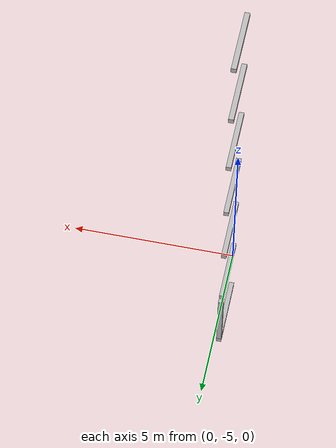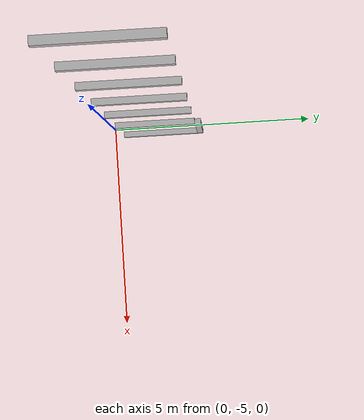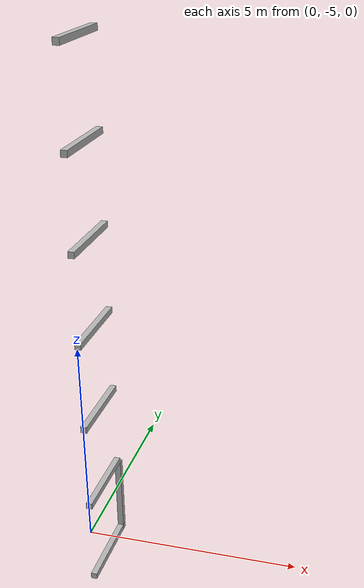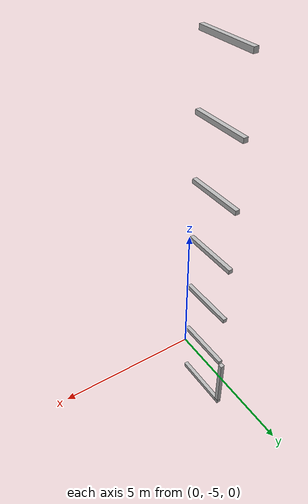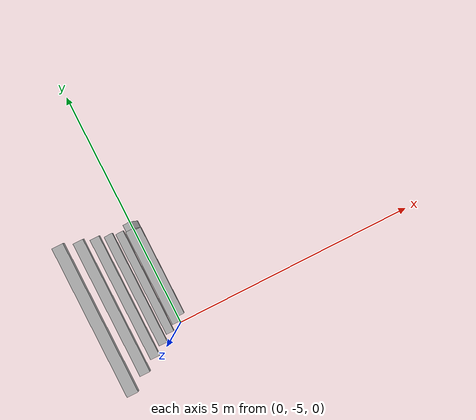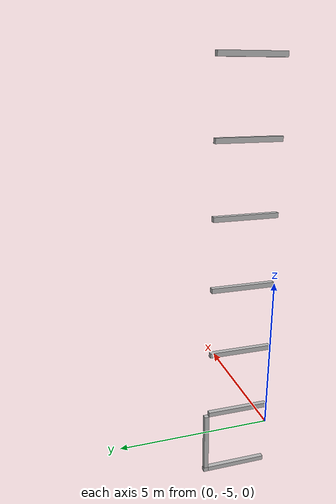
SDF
<sdf version="1.7">
 <world name="default">
  <model name="orthogonal_747_2.000.15_TS">
   <static>1</static>
   <link name="y_link_0_0_3">
    <inertial>
     <mass>1</mass>
     <inertia>
      <ixx>0.166667</ixx>
      <ixy>0</ixy>
      <ixz>0</ixz>
      <iyy>0.166667</iyy>
      <iyz>0</iyz>
      <izz>0.166667</izz>
     </inertia>
    </inertial>
    <pose>6.45 1.075 1.075 0 -0 0</pose>
    <visual name="visual_0">
     <laser_retro>71</laser_retro>
     <geometry><box><size>0.15 1e-06 0.15</size></box></geometry>
     <material>
      <script><name>Gazebo/Grey</name><uri>file://media/materials/scripts/gazebo.material</uri></script>
      <shader type="pixel"><normal_map>__default__</normal_map></shader>
      <ambient>0.678 0.498 0.659 1</ambient>
      <diffuse>0.7 0.7 0.7 1</diffuse>
      <specular>0.01 0.01 0.01 1</specular>
      <emissive>0 0 0 1</emissive>
     </material>
     <pose>0 -1 0 0 -0 0</pose>
     <transparency>1</transparency>
    </visual>
    <visual name="visual_1">
     <laser_retro>72</laser_retro>
     <geometry><box><size>0.15 1e-06 0.15</size></box></geometry>
     <material>
      <script><name>Gazebo/Grey</name><uri>file://media/materials/scripts/gazebo.material</uri></script>
      <shader type="pixel"><normal_map>__default__</normal_map></shader>
      <ambient>0.447 0.624 0.812 1</ambient>
      <diffuse>0.7 0.7 0.7 1</diffuse>
      <specular>0.01 0.01 0.01 1</specular>
      <emissive>0 0 0 1</emissive>
     </material>
     <pose>0 1 0 0 -0 0</pose>
     <transparency>1</transparency>
    </visual>
    <visual name="visual_2">
     <laser_retro>73</laser_retro>
     <geometry><box><size>0.15 2 1e-06</size></box></geometry>
     <material>
      <script><name>Gazebo/Grey</name><uri>file://media/materials/scripts/gazebo.material</uri></script>
      <shader type="pixel"><normal_map>__default__</normal_map></shader>
      <ambient>0.988 0.686 0.243 1</ambient>
      <diffuse>0.7 0.7 0.7 1</diffuse>
      <specular>0.01 0.01 0.01 1</specular>
      <emissive>0 0 0 1</emissive>
     </material>
     <pose>0 0 -0.075 0 -0 0</pose>
     <transparency>1</transparency>
    </visual>
    <visual name="visual_3">
     <laser_retro>74</laser_retro>
     <geometry><box><size>1e-06 2 0.15</size></box></geometry>
     <material>
      <script><name>Gazebo/Grey</name><uri>file://media/materials/scripts/gazebo.material</uri></script>
      <shader type="pixel"><normal_map>__default__</normal_map></shader>
      <ambient>0.988 0.914 0.31 1</ambient>
      <diffuse>0.7 0.7 0.7 1</diffuse>
      <specular>0.01 0.01 0.01 1</specular>
      <emissive>0 0 0 1</emissive>
     </material>
     <pose>0.075 0 0 0 -0 0</pose>
     <transparency>1</transparency>
    </visual>
    <visual name="visual_4">
     <laser_retro>75</laser_retro>
     <geometry><box><size>0.15 2 1e-06</size></box></geometry>
     <material>
      <script><name>Gazebo/Grey</name><uri>file://media/materials/scripts/gazebo.material</uri></script>
      <shader type="pixel"><normal_map>__default__</normal_map></shader>
      <ambient>0.937 0.161 0.161 1</ambient>
      <diffuse>0.7 0.7 0.7 1</diffuse>
      <specular>0.01 0.01 0.01 1</specular>
      <emissive>0 0 0 1</emissive>
     </material>
     <pose>0 0 0.075 0 -0 0</pose>
     <transparency>1</transparency>
    </visual>
    <visual name="visual_5">
     <laser_retro>76</laser_retro>
     <geometry><box><size>1e-06 2 0.15</size></box></geometry>
     <material>
      <script><name>Gazebo/Grey</name><uri>file://media/materials/scripts/gazebo.material</uri></script>
      <shader type="pixel"><normal_map>__default__</normal_map></shader>
      <ambient>0.541 0.886 0.204 1</ambient>
      <diffuse>0.7 0.7 0.7 1</diffuse>
      <specular>0.01 0.01 0.01 1</specular>
      <emissive>0 0 0 1</emissive>
     </material>
     <pose>-0.075 0 0 0 -0 0</pose>
     <transparency>1</transparency>
    </visual>
    <visual name="visual_texture">
     <geometry><box><size>0.149985 1.9998 0.149985</size></box></geometry>
     <material>
      <script>
       <uri>model://BASE_MODELS/simple_block_v2_textured/materials/scripts</uri>
       <uri>model://BASE_MODELS/simple_block_v2_textured/materials/textures</uri>
       <name>metal</name>
      </script>
     </material>
     <laser_retro>77</laser_retro>
    </visual>
    <collision name="collision">
     <geometry><box><size>0.15 2 0.15</size></box></geometry>
     <surface>
      <friction>
       <ode><mu>1</mu><mu2>1</mu2><fdir1>0 0 0</fdir1><slip1>0</slip1><slip2>0</slip2></ode>
       <torsional>
        <coefficient>1</coefficient>
        <patch_radius>0</patch_radius>
        <surface_radius>0</surface_radius>
        <use_patch_radius>1</use_patch_radius>
        <ode><slip>0</slip></ode>
       </torsional>
      </friction>
      <bounce><restitution_coefficient>0</restitution_coefficient><threshold>1e+06</threshold></bounce>
      <contact>
       <collide_without_contact>0</collide_without_contact>
       <collide_without_contact_bitmask>1</collide_without_contact_bitmask>
       <collide_bitmask>1</collide_bitmask>
       <ode>
        <soft_cfm>0</soft_cfm>
        <soft_erp>0.2</soft_erp>
        <kp>1e+13</kp>
        <kd>1</kd>
        <max_vel>0.01</max_vel>
        <min_depth>0</min_depth>
       </ode>
       <bullet>
        <split_impulse>1</split_impulse>
        <split_impulse_penetration_threshold>-0.01</split_impulse_penetration_threshold>
        <soft_cfm>0</soft_cfm>
        <soft_erp>0.2</soft_erp>
        <kp>1e+13</kp>
        <kd>1</kd>
       </bullet>
      </contact>
     </surface>
    </collision>
   </link>
   <link name="u_link_0_1_3">
    <inertial>
     <mass>1</mass>
     <inertia>
      <ixx>0.166667</ixx>
      <ixy>0</ixy>
      <ixz>0</ixz>
      <iyy>0.166667</iyy>
      <iyz>0</iyz>
      <izz>0.166667</izz>
     </inertia>
    </inertial>
    <pose>6.45 2.15 1.075 0 -0 0</pose>
    <visual name="visual_0">
     <laser_retro>239</laser_retro>
     <geometry><box><size>0.15 1e-06 0.15</size></box></geometry>
     <material>
      <script><name>Gazebo/Grey</name><uri>file://media/materials/scripts/gazebo.material</uri></script>
      <shader type="pixel"><normal_map>__default__</normal_map></shader>
      <ambient>0.678 0.498 0.659 1</ambient>
      <diffuse>0.7 0.7 0.7 1</diffuse>
      <specular>0.01 0.01 0.01 1</specular>
      <emissive>0 0 0 1</emissive>
     </material>
     <pose>0 -0.075 0 0 -0 0</pose>
     <transparency>1</transparency>
    </visual>
    <visual name="visual_1">
     <laser_retro>240</laser_retro>
     <geometry><box><size>0.15 1e-06 0.15</size></box></geometry>
     <material>
      <script><name>Gazebo/Grey</name><uri>file://media/materials/scripts/gazebo.material</uri></script>
      <shader type="pixel"><normal_map>__default__</normal_map></shader>
      <ambient>0.447 0.624 0.812 1</ambient>
      <diffuse>0.7 0.7 0.7 1</diffuse>
      <specular>0.01 0.01 0.01 1</specular>
      <emissive>0 0 0 1</emissive>
     </material>
     <pose>0 0.075 0 0 -0 0</pose>
     <transparency>1</transparency>
    </visual>
    <visual name="visual_2">
     <laser_retro>241</laser_retro>
     <geometry><box><size>0.15 0.15 1e-06</size></box></geometry>
     <material>
      <script><name>Gazebo/Grey</name><uri>file://media/materials/scripts/gazebo.material</uri></script>
      <shader type="pixel"><normal_map>__default__</normal_map></shader>
      <ambient>0.988 0.686 0.243 1</ambient>
      <diffuse>0.7 0.7 0.7 1</diffuse>
      <specular>0.01 0.01 0.01 1</specular>
      <emissive>0 0 0 1</emissive>
     </material>
     <pose>0 0 -0.075 0 -0 0</pose>
     <transparency>1</transparency>
    </visual>
    <visual name="visual_3">
     <laser_retro>242</laser_retro>
     <geometry><box><size>1e-06 0.15 0.15</size></box></geometry>
     <material>
      <script><name>Gazebo/Grey</name><uri>file://media/materials/scripts/gazebo.material</uri></script>
      <shader type="pixel"><normal_map>__default__</normal_map></shader>
      <ambient>0.988 0.914 0.31 1</ambient>
      <diffuse>0.7 0.7 0.7 1</diffuse>
      <specular>0.01 0.01 0.01 1</specular>
      <emissive>0 0 0 1</emissive>
     </material>
     <pose>0.075 0 0 0 -0 0</pose>
     <transparency>1</transparency>
    </visual>
    <visual name="visual_4">
     <laser_retro>243</laser_retro>
     <geometry><box><size>0.15 0.15 1e-06</size></box></geometry>
     <material>
      <script><name>Gazebo/Grey</name><uri>file://media/materials/scripts/gazebo.material</uri></script>
      <shader type="pixel"><normal_map>__default__</normal_map></shader>
      <ambient>0.937 0.161 0.161 1</ambient>
      <diffuse>0.7 0.7 0.7 1</diffuse>
      <specular>0.01 0.01 0.01 1</specular>
      <emissive>0 0 0 1</emissive>
     </material>
     <pose>0 0 0.075 0 -0 0</pose>
     <transparency>1</transparency>
    </visual>
    <visual name="visual_5">
     <laser_retro>244</laser_retro>
     <geometry><box><size>1e-06 0.15 0.15</size></box></geometry>
     <material>
      <script><name>Gazebo/Grey</name><uri>file://media/materials/scripts/gazebo.material</uri></script>
      <shader type="pixel"><normal_map>__default__</normal_map></shader>
      <ambient>0.541 0.886 0.204 1</ambient>
      <diffuse>0.7 0.7 0.7 1</diffuse>
      <specular>0.01 0.01 0.01 1</specular>
      <emissive>0 0 0 1</emissive>
     </material>
     <pose>-0.075 0 0 0 -0 0</pose>
     <transparency>1</transparency>
    </visual>
    <visual name="visual_texture">
     <geometry><box><size>0.149985 0.149985 0.149985</size></box></geometry>
     <material>
      <script>
       <uri>model://BASE_MODELS/simple_block_v2_textured/materials/scripts</uri>
       <uri>model://BASE_MODELS/simple_block_v2_textured/materials/textures</uri>
       <name>metal</name>
      </script>
     </material>
     <laser_retro>245</laser_retro>
    </visual>
    <collision name="collision">
     <geometry><box><size>0.15 0.15 0.15</size></box></geometry>
     <surface>
      <friction>
       <ode><mu>1</mu><mu2>1</mu2><fdir1>0 0 0</fdir1><slip1>0</slip1><slip2>0</slip2></ode>
       <torsional>
        <coefficient>1</coefficient>
        <patch_radius>0</patch_radius>
        <surface_radius>0</surface_radius>
        <use_patch_radius>1</use_patch_radius>
        <ode><slip>0</slip></ode>
       </torsional>
      </friction>
      <bounce><restitution_coefficient>0</restitution_coefficient><threshold>1e+06</threshold></bounce>
      <contact>
       <collide_without_contact>0</collide_without_contact>
       <collide_without_contact_bitmask>1</collide_without_contact_bitmask>
       <collide_bitmask>1</collide_bitmask>
       <ode>
        <soft_cfm>0</soft_cfm>
        <soft_erp>0.2</soft_erp>
        <kp>1e+13</kp>
        <kd>1</kd>
        <max_vel>0.01</max_vel>
        <min_depth>0</min_depth>
       </ode>
       <bullet>
        <split_impulse>1</split_impulse>
        <split_impulse_penetration_threshold>-0.01</split_impulse_penetration_threshold>
        <soft_cfm>0</soft_cfm>
        <soft_erp>0.2</soft_erp>
        <kp>1e+13</kp>
        <kd>1</kd>
       </bullet>
      </contact>
     </surface>
    </collision>
   </link>
   <link name="y_link_1_0_3">
    <inertial>
     <mass>1</mass>
     <inertia>
      <ixx>0.166667</ixx>
      <ixy>0</ixy>
      <ixz>0</ixz>
      <iyy>0.166667</iyy>
      <iyz>0</iyz>
      <izz>0.166667</izz>
     </inertia>
    </inertial>
    <pose>6.45 1.075 3.225 0 -0 0</pose>
    <visual name="visual_0">
     <laser_retro>841</laser_retro>
     <geometry><box><size>0.15 1e-06 0.15</size></box></geometry>
     <material>
      <script><name>Gazebo/Grey</name><uri>file://media/materials/scripts/gazebo.material</uri></script>
      <shader type="pixel"><normal_map>__default__</normal_map></shader>
      <ambient>0.678 0.498 0.659 1</ambient>
      <diffuse>0.7 0.7 0.7 1</diffuse>
      <specular>0.01 0.01 0.01 1</specular>
      <emissive>0 0 0 1</emissive>
     </material>
     <pose>0 -1 0 0 -0 0</pose>
     <transparency>1</transparency>
    </visual>
    <visual name="visual_1">
     <laser_retro>842</laser_retro>
     <geometry><box><size>0.15 1e-06 0.15</size></box></geometry>
     <material>
      <script><name>Gazebo/Grey</name><uri>file://media/materials/scripts/gazebo.material</uri></script>
      <shader type="pixel"><normal_map>__default__</normal_map></shader>
      <ambient>0.447 0.624 0.812 1</ambient>
      <diffuse>0.7 0.7 0.7 1</diffuse>
      <specular>0.01 0.01 0.01 1</specular>
      <emissive>0 0 0 1</emissive>
     </material>
     <pose>0 1 0 0 -0 0</pose>
     <transparency>1</transparency>
    </visual>
    <visual name="visual_2">
     <laser_retro>843</laser_retro>
     <geometry><box><size>0.15 2 1e-06</size></box></geometry>
     <material>
      <script><name>Gazebo/Grey</name><uri>file://media/materials/scripts/gazebo.material</uri></script>
      <shader type="pixel"><normal_map>__default__</normal_map></shader>
      <ambient>0.988 0.686 0.243 1</ambient>
      <diffuse>0.7 0.7 0.7 1</diffuse>
      <specular>0.01 0.01 0.01 1</specular>
      <emissive>0 0 0 1</emissive>
     </material>
     <pose>0 0 -0.075 0 -0 0</pose>
     <transparency>1</transparency>
    </visual>
    <visual name="visual_3">
     <laser_retro>844</laser_retro>
     <geometry><box><size>1e-06 2 0.15</size></box></geometry>
     <material>
      <script><name>Gazebo/Grey</name><uri>file://media/materials/scripts/gazebo.material</uri></script>
      <shader type="pixel"><normal_map>__default__</normal_map></shader>
      <ambient>0.988 0.914 0.31 1</ambient>
      <diffuse>0.7 0.7 0.7 1</diffuse>
      <specular>0.01 0.01 0.01 1</specular>
      <emissive>0 0 0 1</emissive>
     </material>
     <pose>0.075 0 0 0 -0 0</pose>
     <transparency>1</transparency>
    </visual>
    <visual name="visual_4">
     <laser_retro>845</laser_retro>
     <geometry><box><size>0.15 2 1e-06</size></box></geometry>
     <material>
      <script><name>Gazebo/Grey</name><uri>file://media/materials/scripts/gazebo.material</uri></script>
      <shader type="pixel"><normal_map>__default__</normal_map></shader>
      <ambient>0.937 0.161 0.161 1</ambient>
      <diffuse>0.7 0.7 0.7 1</diffuse>
      <specular>0.01 0.01 0.01 1</specular>
      <emissive>0 0 0 1</emissive>
     </material>
     <pose>0 0 0.075 0 -0 0</pose>
     <transparency>1</transparency>
    </visual>
    <visual name="visual_5">
     <laser_retro>846</laser_retro>
     <geometry><box><size>1e-06 2 0.15</size></box></geometry>
     <material>
      <script><name>Gazebo/Grey</name><uri>file://media/materials/scripts/gazebo.material</uri></script>
      <shader type="pixel"><normal_map>__default__</normal_map></shader>
      <ambient>0.541 0.886 0.204 1</ambient>
      <diffuse>0.7 0.7 0.7 1</diffuse>
      <specular>0.01 0.01 0.01 1</specular>
      <emissive>0 0 0 1</emissive>
     </material>
     <pose>-0.075 0 0 0 -0 0</pose>
     <transparency>1</transparency>
    </visual>
    <visual name="visual_texture">
     <geometry><box><size>0.149985 1.9998 0.149985</size></box></geometry>
     <material>
      <script>
       <uri>model://BASE_MODELS/simple_block_v2_textured/materials/scripts</uri>
       <uri>model://BASE_MODELS/simple_block_v2_textured/materials/textures</uri>
       <name>metal</name>
      </script>
     </material>
     <laser_retro>847</laser_retro>
    </visual>
    <collision name="collision">
     <geometry><box><size>0.15 2 0.15</size></box></geometry>
     <surface>
      <friction>
       <ode><mu>1</mu><mu2>1</mu2><fdir1>0 0 0</fdir1><slip1>0</slip1><slip2>0</slip2></ode>
       <torsional>
        <coefficient>1</coefficient>
        <patch_radius>0</patch_radius>
        <surface_radius>0</surface_radius>
        <use_patch_radius>1</use_patch_radius>
        <ode><slip>0</slip></ode>
       </torsional>
      </friction>
      <bounce><restitution_coefficient>0</restitution_coefficient><threshold>1e+06</threshold></bounce>
      <contact>
       <collide_without_contact>0</collide_without_contact>
       <collide_without_contact_bitmask>1</collide_without_contact_bitmask>
       <collide_bitmask>1</collide_bitmask>
       <ode>
        <soft_cfm>0</soft_cfm>
        <soft_erp>0.2</soft_erp>
        <kp>1e+13</kp>
        <kd>1</kd>
        <max_vel>0.01</max_vel>
        <min_depth>0</min_depth>
       </ode>
       <bullet>
        <split_impulse>1</split_impulse>
        <split_impulse_penetration_threshold>-0.01</split_impulse_penetration_threshold>
        <soft_cfm>0</soft_cfm>
        <soft_erp>0.2</soft_erp>
        <kp>1e+13</kp>
        <kd>1</kd>
       </bullet>
      </contact>
     </surface>
    </collision>
   </link>
   <link name="z_link_1_1_3">
    <inertial>
     <mass>1</mass>
     <inertia>
      <ixx>0.166667</ixx>
      <ixy>0</ixy>
      <ixz>0</ixz>
      <iyy>0.166667</iyy>
      <iyz>0</iyz>
      <izz>0.166667</izz>
     </inertia>
    </inertial>
    <pose>6.45 2.15 2.15 0 -0 0</pose>
    <visual name="visual_0">
     <laser_retro>1051</laser_retro>
     <geometry><box><size>0.15 1e-06 2</size></box></geometry>
     <material>
      <script><name>Gazebo/Grey</name><uri>file://media/materials/scripts/gazebo.material</uri></script>
      <shader type="pixel"><normal_map>__default__</normal_map></shader>
      <ambient>0.678 0.498 0.659 1</ambient>
      <diffuse>0.7 0.7 0.7 1</diffuse>
      <specular>0.01 0.01 0.01 1</specular>
      <emissive>0 0 0 1</emissive>
     </material>
     <pose>0 -0.075 0 0 -0 0</pose>
     <transparency>1</transparency>
    </visual>
    <visual name="visual_1">
     <laser_retro>1052</laser_retro>
     <geometry><box><size>0.15 1e-06 2</size></box></geometry>
     <material>
      <script><name>Gazebo/Grey</name><uri>file://media/materials/scripts/gazebo.material</uri></script>
      <shader type="pixel"><normal_map>__default__</normal_map></shader>
      <ambient>0.447 0.624 0.812 1</ambient>
      <diffuse>0.7 0.7 0.7 1</diffuse>
      <specular>0.01 0.01 0.01 1</specular>
      <emissive>0 0 0 1</emissive>
     </material>
     <pose>0 0.075 0 0 -0 0</pose>
     <transparency>1</transparency>
    </visual>
    <visual name="visual_2">
     <laser_retro>1053</laser_retro>
     <geometry><box><size>0.15 0.15 1e-06</size></box></geometry>
     <material>
      <script><name>Gazebo/Grey</name><uri>file://media/materials/scripts/gazebo.material</uri></script>
      <shader type="pixel"><normal_map>__default__</normal_map></shader>
      <ambient>0.988 0.686 0.243 1</ambient>
      <diffuse>0.7 0.7 0.7 1</diffuse>
      <specular>0.01 0.01 0.01 1</specular>
      <emissive>0 0 0 1</emissive>
     </material>
     <pose>0 0 -1 0 -0 0</pose>
     <transparency>1</transparency>
    </visual>
    <visual name="visual_3">
     <laser_retro>1054</laser_retro>
     <geometry><box><size>1e-06 0.15 2</size></box></geometry>
     <material>
      <script><name>Gazebo/Grey</name><uri>file://media/materials/scripts/gazebo.material</uri></script>
      <shader type="pixel"><normal_map>__default__</normal_map></shader>
      <ambient>0.988 0.914 0.31 1</ambient>
      <diffuse>0.7 0.7 0.7 1</diffuse>
      <specular>0.01 0.01 0.01 1</specular>
      <emissive>0 0 0 1</emissive>
     </material>
     <pose>0.075 0 0 0 -0 0</pose>
     <transparency>1</transparency>
    </visual>
    <visual name="visual_4">
     <laser_retro>1055</laser_retro>
     <geometry><box><size>0.15 0.15 1e-06</size></box></geometry>
     <material>
      <script><name>Gazebo/Grey</name><uri>file://media/materials/scripts/gazebo.material</uri></script>
      <shader type="pixel"><normal_map>__default__</normal_map></shader>
      <ambient>0.937 0.161 0.161 1</ambient>
      <diffuse>0.7 0.7 0.7 1</diffuse>
      <specular>0.01 0.01 0.01 1</specular>
      <emissive>0 0 0 1</emissive>
     </material>
     <pose>0 0 1 0 -0 0</pose>
     <transparency>1</transparency>
    </visual>
    <visual name="visual_5">
     <laser_retro>1056</laser_retro>
     <geometry><box><size>1e-06 0.15 2</size></box></geometry>
     <material>
      <script><name>Gazebo/Grey</name><uri>file://media/materials/scripts/gazebo.material</uri></script>
      <shader type="pixel"><normal_map>__default__</normal_map></shader>
      <ambient>0.541 0.886 0.204 1</ambient>
      <diffuse>0.7 0.7 0.7 1</diffuse>
      <specular>0.01 0.01 0.01 1</specular>
      <emissive>0 0 0 1</emissive>
     </material>
     <pose>-0.075 0 0 0 -0 0</pose>
     <transparency>1</transparency>
    </visual>
    <visual name="visual_texture">
     <geometry><box><size>0.149985 0.149985 1.9998</size></box></geometry>
     <material>
      <script>
       <uri>model://BASE_MODELS/simple_block_v2_textured/materials/scripts</uri>
       <uri>model://BASE_MODELS/simple_block_v2_textured/materials/textures</uri>
       <name>metal</name>
      </script>
     </material>
     <laser_retro>1057</laser_retro>
    </visual>
    <collision name="collision">
     <geometry><box><size>0.15 0.15 2</size></box></geometry>
     <surface>
      <friction>
       <ode><mu>1</mu><mu2>1</mu2><fdir1>0 0 0</fdir1><slip1>0</slip1><slip2>0</slip2></ode>
       <torsional>
        <coefficient>1</coefficient>
        <patch_radius>0</patch_radius>
        <surface_radius>0</surface_radius>
        <use_patch_radius>1</use_patch_radius>
        <ode><slip>0</slip></ode>
       </torsional>
      </friction>
      <bounce><restitution_coefficient>0</restitution_coefficient><threshold>1e+06</threshold></bounce>
      <contact>
       <collide_without_contact>0</collide_without_contact>
       <collide_without_contact_bitmask>1</collide_without_contact_bitmask>
       <collide_bitmask>1</collide_bitmask>
       <ode>
        <soft_cfm>0</soft_cfm>
        <soft_erp>0.2</soft_erp>
        <kp>1e+13</kp>
        <kd>1</kd>
        <max_vel>0.01</max_vel>
        <min_depth>0</min_depth>
       </ode>
       <bullet>
        <split_impulse>1</split_impulse>
        <split_impulse_penetration_threshold>-0.01</split_impulse_penetration_threshold>
        <soft_cfm>0</soft_cfm>
        <soft_erp>0.2</soft_erp>
        <kp>1e+13</kp>
        <kd>1</kd>
       </bullet>
      </contact>
     </surface>
    </collision>
   </link>
   <link name="y_link_2_0_3">
    <inertial>
     <mass>1</mass>
     <inertia>
      <ixx>0.166667</ixx>
      <ixy>0</ixy>
      <ixz>0</ixz>
      <iyy>0.166667</iyy>
      <iyz>0</iyz>
      <izz>0.166667</izz>
     </inertia>
    </inertial>
    <pose>6.45 1.075 5.375 0 -0 0</pose>
    <visual name="visual_0">
     <laser_retro>1744</laser_retro>
     <geometry><box><size>0.15 1e-06 0.15</size></box></geometry>
     <material>
      <script><name>Gazebo/Grey</name><uri>file://media/materials/scripts/gazebo.material</uri></script>
      <shader type="pixel"><normal_map>__default__</normal_map></shader>
      <ambient>0.678 0.498 0.659 1</ambient>
      <diffuse>0.7 0.7 0.7 1</diffuse>
      <specular>0.01 0.01 0.01 1</specular>
      <emissive>0 0 0 1</emissive>
     </material>
     <pose>0 -1 0 0 -0 0</pose>
     <transparency>1</transparency>
    </visual>
    <visual name="visual_1">
     <laser_retro>1745</laser_retro>
     <geometry><box><size>0.15 1e-06 0.15</size></box></geometry>
     <material>
      <script><name>Gazebo/Grey</name><uri>file://media/materials/scripts/gazebo.material</uri></script>
      <shader type="pixel"><normal_map>__default__</normal_map></shader>
      <ambient>0.447 0.624 0.812 1</ambient>
      <diffuse>0.7 0.7 0.7 1</diffuse>
      <specular>0.01 0.01 0.01 1</specular>
      <emissive>0 0 0 1</emissive>
     </material>
     <pose>0 1 0 0 -0 0</pose>
     <transparency>1</transparency>
    </visual>
    <visual name="visual_2">
     <laser_retro>1746</laser_retro>
     <geometry><box><size>0.15 2 1e-06</size></box></geometry>
     <material>
      <script><name>Gazebo/Grey</name><uri>file://media/materials/scripts/gazebo.material</uri></script>
      <shader type="pixel"><normal_map>__default__</normal_map></shader>
      <ambient>0.988 0.686 0.243 1</ambient>
      <diffuse>0.7 0.7 0.7 1</diffuse>
      <specular>0.01 0.01 0.01 1</specular>
      <emissive>0 0 0 1</emissive>
     </material>
     <pose>0 0 -0.075 0 -0 0</pose>
     <transparency>1</transparency>
    </visual>
    <visual name="visual_3">
     <laser_retro>1747</laser_retro>
     <geometry><box><size>1e-06 2 0.15</size></box></geometry>
     <material>
      <script><name>Gazebo/Grey</name><uri>file://media/materials/scripts/gazebo.material</uri></script>
      <shader type="pixel"><normal_map>__default__</normal_map></shader>
      <ambient>0.988 0.914 0.31 1</ambient>
      <diffuse>0.7 0.7 0.7 1</diffuse>
      <specular>0.01 0.01 0.01 1</specular>
      <emissive>0 0 0 1</emissive>
     </material>
     <pose>0.075 0 0 0 -0 0</pose>
     <transparency>1</transparency>
    </visual>
    <visual name="visual_4">
     <laser_retro>1748</laser_retro>
     <geometry><box><size>0.15 2 1e-06</size></box></geometry>
     <material>
      <script><name>Gazebo/Grey</name><uri>file://media/materials/scripts/gazebo.material</uri></script>
      <shader type="pixel"><normal_map>__default__</normal_map></shader>
      <ambient>0.937 0.161 0.161 1</ambient>
      <diffuse>0.7 0.7 0.7 1</diffuse>
      <specular>0.01 0.01 0.01 1</specular>
      <emissive>0 0 0 1</emissive>
     </material>
     <pose>0 0 0.075 0 -0 0</pose>
     <transparency>1</transparency>
    </visual>
    <visual name="visual_5">
     <laser_retro>1749</laser_retro>
     <geometry><box><size>1e-06 2 0.15</size></box></geometry>
     <material>
      <script><name>Gazebo/Grey</name><uri>file://media/materials/scripts/gazebo.material</uri></script>
      <shader type="pixel"><normal_map>__default__</normal_map></shader>
      <ambient>0.541 0.886 0.204 1</ambient>
      <diffuse>0.7 0.7 0.7 1</diffuse>
      <specular>0.01 0.01 0.01 1</specular>
      <emissive>0 0 0 1</emissive>
     </material>
     <pose>-0.075 0 0 0 -0 0</pose>
     <transparency>1</transparency>
    </visual>
    <visual name="visual_texture">
     <geometry><box><size>0.149985 1.9998 0.149985</size></box></geometry>
     <material>
      <script>
       <uri>model://BASE_MODELS/simple_block_v2_textured/materials/scripts</uri>
       <uri>model://BASE_MODELS/simple_block_v2_textured/materials/textures</uri>
       <name>metal</name>
      </script>
     </material>
     <laser_retro>1750</laser_retro>
    </visual>
    <collision name="collision">
     <geometry><box><size>0.15 2 0.15</size></box></geometry>
     <surface>
      <friction>
       <ode><mu>1</mu><mu2>1</mu2><fdir1>0 0 0</fdir1><slip1>0</slip1><slip2>0</slip2></ode>
       <torsional>
        <coefficient>1</coefficient>
        <patch_radius>0</patch_radius>
        <surface_radius>0</surface_radius>
        <use_patch_radius>1</use_patch_radius>
        <ode><slip>0</slip></ode>
       </torsional>
      </friction>
      <bounce><restitution_coefficient>0</restitution_coefficient><threshold>1e+06</threshold></bounce>
      <contact>
       <collide_without_contact>0</collide_without_contact>
       <collide_without_contact_bitmask>1</collide_without_contact_bitmask>
       <collide_bitmask>1</collide_bitmask>
       <ode>
        <soft_cfm>0</soft_cfm>
        <soft_erp>0.2</soft_erp>
        <kp>1e+13</kp>
        <kd>1</kd>
        <max_vel>0.01</max_vel>
        <min_depth>0</min_depth>
       </ode>
       <bullet>
        <split_impulse>1</split_impulse>
        <split_impulse_penetration_threshold>-0.01</split_impulse_penetration_threshold>
        <soft_cfm>0</soft_cfm>
        <soft_erp>0.2</soft_erp>
        <kp>1e+13</kp>
        <kd>1</kd>
       </bullet>
      </contact>
     </surface>
    </collision>
   </link>
   <link name="y_link_3_0_3">
    <inertial>
     <mass>1</mass>
     <inertia>
      <ixx>0.166667</ixx>
      <ixy>0</ixy>
      <ixz>0</ixz>
      <iyy>0.166667</iyy>
      <iyz>0</iyz>
      <izz>0.166667</izz>
     </inertia>
    </inertial>
    <pose>6.45 1.075 7.525 0 -0 0</pose>
    <visual name="visual_0">
     <laser_retro>2647</laser_retro>
     <geometry><box><size>0.15 1e-06 0.15</size></box></geometry>
     <material>
      <script><name>Gazebo/Grey</name><uri>file://media/materials/scripts/gazebo.material</uri></script>
      <shader type="pixel"><normal_map>__default__</normal_map></shader>
      <ambient>0.678 0.498 0.659 1</ambient>
      <diffuse>0.7 0.7 0.7 1</diffuse>
      <specular>0.01 0.01 0.01 1</specular>
      <emissive>0 0 0 1</emissive>
     </material>
     <pose>0 -1 0 0 -0 0</pose>
     <transparency>1</transparency>
    </visual>
    <visual name="visual_1">
     <laser_retro>2648</laser_retro>
     <geometry><box><size>0.15 1e-06 0.15</size></box></geometry>
     <material>
      <script><name>Gazebo/Grey</name><uri>file://media/materials/scripts/gazebo.material</uri></script>
      <shader type="pixel"><normal_map>__default__</normal_map></shader>
      <ambient>0.447 0.624 0.812 1</ambient>
      <diffuse>0.7 0.7 0.7 1</diffuse>
      <specular>0.01 0.01 0.01 1</specular>
      <emissive>0 0 0 1</emissive>
     </material>
     <pose>0 1 0 0 -0 0</pose>
     <transparency>1</transparency>
    </visual>
    <visual name="visual_2">
     <laser_retro>2649</laser_retro>
     <geometry><box><size>0.15 2 1e-06</size></box></geometry>
     <material>
      <script><name>Gazebo/Grey</name><uri>file://media/materials/scripts/gazebo.material</uri></script>
      <shader type="pixel"><normal_map>__default__</normal_map></shader>
      <ambient>0.988 0.686 0.243 1</ambient>
      <diffuse>0.7 0.7 0.7 1</diffuse>
      <specular>0.01 0.01 0.01 1</specular>
      <emissive>0 0 0 1</emissive>
     </material>
     <pose>0 0 -0.075 0 -0 0</pose>
     <transparency>1</transparency>
    </visual>
    <visual name="visual_3">
     <laser_retro>2650</laser_retro>
     <geometry><box><size>1e-06 2 0.15</size></box></geometry>
     <material>
      <script><name>Gazebo/Grey</name><uri>file://media/materials/scripts/gazebo.material</uri></script>
      <shader type="pixel"><normal_map>__default__</normal_map></shader>
      <ambient>0.988 0.914 0.31 1</ambient>
      <diffuse>0.7 0.7 0.7 1</diffuse>
      <specular>0.01 0.01 0.01 1</specular>
      <emissive>0 0 0 1</emissive>
     </material>
     <pose>0.075 0 0 0 -0 0</pose>
     <transparency>1</transparency>
    </visual>
    <visual name="visual_4">
     <laser_retro>2651</laser_retro>
     <geometry><box><size>0.15 2 1e-06</size></box></geometry>
     <material>
      <script><name>Gazebo/Grey</name><uri>file://media/materials/scripts/gazebo.material</uri></script>
      <shader type="pixel"><normal_map>__default__</normal_map></shader>
      <ambient>0.937 0.161 0.161 1</ambient>
      <diffuse>0.7 0.7 0.7 1</diffuse>
      <specular>0.01 0.01 0.01 1</specular>
      <emissive>0 0 0 1</emissive>
     </material>
     <pose>0 0 0.075 0 -0 0</pose>
     <transparency>1</transparency>
    </visual>
    <visual name="visual_5">
     <laser_retro>2652</laser_retro>
     <geometry><box><size>1e-06 2 0.15</size></box></geometry>
     <material>
      <script><name>Gazebo/Grey</name><uri>file://media/materials/scripts/gazebo.material</uri></script>
      <shader type="pixel"><normal_map>__default__</normal_map></shader>
      <ambient>0.541 0.886 0.204 1</ambient>
      <diffuse>0.7 0.7 0.7 1</diffuse>
      <specular>0.01 0.01 0.01 1</specular>
      <emissive>0 0 0 1</emissive>
     </material>
     <pose>-0.075 0 0 0 -0 0</pose>
     <transparency>1</transparency>
    </visual>
    <visual name="visual_texture">
     <geometry><box><size>0.149985 1.9998 0.149985</size></box></geometry>
     <material>
      <script>
       <uri>model://BASE_MODELS/simple_block_v2_textured/materials/scripts</uri>
       <uri>model://BASE_MODELS/simple_block_v2_textured/materials/textures</uri>
       <name>metal</name>
      </script>
     </material>
     <laser_retro>2653</laser_retro>
    </visual>
    <collision name="collision">
     <geometry><box><size>0.15 2 0.15</size></box></geometry>
     <surface>
      <friction>
       <ode><mu>1</mu><mu2>1</mu2><fdir1>0 0 0</fdir1><slip1>0</slip1><slip2>0</slip2></ode>
       <torsional>
        <coefficient>1</coefficient>
        <patch_radius>0</patch_radius>
        <surface_radius>0</surface_radius>
        <use_patch_radius>1</use_patch_radius>
        <ode><slip>0</slip></ode>
       </torsional>
      </friction>
      <bounce><restitution_coefficient>0</restitution_coefficient><threshold>1e+06</threshold></bounce>
      <contact>
       <collide_without_contact>0</collide_without_contact>
       <collide_without_contact_bitmask>1</collide_without_contact_bitmask>
       <collide_bitmask>1</collide_bitmask>
       <ode>
        <soft_cfm>0</soft_cfm>
        <soft_erp>0.2</soft_erp>
        <kp>1e+13</kp>
        <kd>1</kd>
        <max_vel>0.01</max_vel>
        <min_depth>0</min_depth>
       </ode>
       <bullet>
        <split_impulse>1</split_impulse>
        <split_impulse_penetration_threshold>-0.01</split_impulse_penetration_threshold>
        <soft_cfm>0</soft_cfm>
        <soft_erp>0.2</soft_erp>
        <kp>1e+13</kp>
        <kd>1</kd>
       </bullet>
      </contact>
     </surface>
    </collision>
   </link>
   <link name="y_link_4_0_3">
    <inertial>
     <mass>1</mass>
     <inertia>
      <ixx>0.166667</ixx>
      <ixy>0</ixy>
      <ixz>0</ixz>
      <iyy>0.166667</iyy>
      <iyz>0</iyz>
      <izz>0.166667</izz>
     </inertia>
    </inertial>
    <pose>6.45 1.075 9.675 0 -0 0</pose>
    <visual name="visual_0">
     <laser_retro>3550</laser_retro>
     <geometry><box><size>0.15 1e-06 0.15</size></box></geometry>
     <material>
      <script><name>Gazebo/Grey</name><uri>file://media/materials/scripts/gazebo.material</uri></script>
      <shader type="pixel"><normal_map>__default__</normal_map></shader>
      <ambient>0.678 0.498 0.659 1</ambient>
      <diffuse>0.7 0.7 0.7 1</diffuse>
      <specular>0.01 0.01 0.01 1</specular>
      <emissive>0 0 0 1</emissive>
     </material>
     <pose>0 -1 0 0 -0 0</pose>
     <transparency>1</transparency>
    </visual>
    <visual name="visual_1">
     <laser_retro>3551</laser_retro>
     <geometry><box><size>0.15 1e-06 0.15</size></box></geometry>
     <material>
      <script><name>Gazebo/Grey</name><uri>file://media/materials/scripts/gazebo.material</uri></script>
      <shader type="pixel"><normal_map>__default__</normal_map></shader>
      <ambient>0.447 0.624 0.812 1</ambient>
      <diffuse>0.7 0.7 0.7 1</diffuse>
      <specular>0.01 0.01 0.01 1</specular>
      <emissive>0 0 0 1</emissive>
     </material>
     <pose>0 1 0 0 -0 0</pose>
     <transparency>1</transparency>
    </visual>
    <visual name="visual_2">
     <laser_retro>3552</laser_retro>
     <geometry><box><size>0.15 2 1e-06</size></box></geometry>
     <material>
      <script><name>Gazebo/Grey</name><uri>file://media/materials/scripts/gazebo.material</uri></script>
      <shader type="pixel"><normal_map>__default__</normal_map></shader>
      <ambient>0.988 0.686 0.243 1</ambient>
      <diffuse>0.7 0.7 0.7 1</diffuse>
      <specular>0.01 0.01 0.01 1</specular>
      <emissive>0 0 0 1</emissive>
     </material>
     <pose>0 0 -0.075 0 -0 0</pose>
     <transparency>1</transparency>
    </visual>
    <visual name="visual_3">
     <laser_retro>3553</laser_retro>
     <geometry><box><size>1e-06 2 0.15</size></box></geometry>
     <material>
      <script><name>Gazebo/Grey</name><uri>file://media/materials/scripts/gazebo.material</uri></script>
      <shader type="pixel"><normal_map>__default__</normal_map></shader>
      <ambient>0.988 0.914 0.31 1</ambient>
      <diffuse>0.7 0.7 0.7 1</diffuse>
      <specular>0.01 0.01 0.01 1</specular>
      <emissive>0 0 0 1</emissive>
     </material>
     <pose>0.075 0 0 0 -0 0</pose>
     <transparency>1</transparency>
    </visual>
    <visual name="visual_4">
     <laser_retro>3554</laser_retro>
     <geometry><box><size>0.15 2 1e-06</size></box></geometry>
     <material>
      <script><name>Gazebo/Grey</name><uri>file://media/materials/scripts/gazebo.material</uri></script>
      <shader type="pixel"><normal_map>__default__</normal_map></shader>
      <ambient>0.937 0.161 0.161 1</ambient>
      <diffuse>0.7 0.7 0.7 1</diffuse>
      <specular>0.01 0.01 0.01 1</specular>
      <emissive>0 0 0 1</emissive>
     </material>
     <pose>0 0 0.075 0 -0 0</pose>
     <transparency>1</transparency>
    </visual>
    <visual name="visual_5">
     <laser_retro>3555</laser_retro>
     <geometry><box><size>1e-06 2 0.15</size></box></geometry>
     <material>
      <script><name>Gazebo/Grey</name><uri>file://media/materials/scripts/gazebo.material</uri></script>
      <shader type="pixel"><normal_map>__default__</normal_map></shader>
      <ambient>0.541 0.886 0.204 1</ambient>
      <diffuse>0.7 0.7 0.7 1</diffuse>
      <specular>0.01 0.01 0.01 1</specular>
      <emissive>0 0 0 1</emissive>
     </material>
     <pose>-0.075 0 0 0 -0 0</pose>
     <transparency>1</transparency>
    </visual>
    <visual name="visual_texture">
     <geometry><box><size>0.149985 1.9998 0.149985</size></box></geometry>
     <material>
      <script>
       <uri>model://BASE_MODELS/simple_block_v2_textured/materials/scripts</uri>
       <uri>model://BASE_MODELS/simple_block_v2_textured/materials/textures</uri>
       <name>metal</name>
      </script>
     </material>
     <laser_retro>3556</laser_retro>
    </visual>
    <collision name="collision">
     <geometry><box><size>0.15 2 0.15</size></box></geometry>
     <surface>
      <friction>
       <ode><mu>1</mu><mu2>1</mu2><fdir1>0 0 0</fdir1><slip1>0</slip1><slip2>0</slip2></ode>
       <torsional>
        <coefficient>1</coefficient>
        <patch_radius>0</patch_radius>
        <surface_radius>0</surface_radius>
        <use_patch_radius>1</use_patch_radius>
        <ode><slip>0</slip></ode>
       </torsional>
      </friction>
      <bounce><restitution_coefficient>0</restitution_coefficient><threshold>1e+06</threshold></bounce>
      <contact>
       <collide_without_contact>0</collide_without_contact>
       <collide_without_contact_bitmask>1</collide_without_contact_bitmask>
       <collide_bitmask>1</collide_bitmask>
       <ode>
        <soft_cfm>0</soft_cfm>
        <soft_erp>0.2</soft_erp>
        <kp>1e+13</kp>
        <kd>1</kd>
        <max_vel>0.01</max_vel>
        <min_depth>0</min_depth>
       </ode>
       <bullet>
        <split_impulse>1</split_impulse>
        <split_impulse_penetration_threshold>-0.01</split_impulse_penetration_threshold>
        <soft_cfm>0</soft_cfm>
        <soft_erp>0.2</soft_erp>
        <kp>1e+13</kp>
        <kd>1</kd>
       </bullet>
      </contact>
     </surface>
    </collision>
   </link>
   <link name="y_link_5_0_3">
    <inertial>
     <mass>1</mass>
     <inertia>
      <ixx>0.166667</ixx>
      <ixy>0</ixy>
      <ixz>0</ixz>
      <iyy>0.166667</iyy>
      <iyz>0</iyz>
      <izz>0.166667</izz>
     </inertia>
    </inertial>
    <pose>6.45 1.075 11.825 0 -0 0</pose>
    <visual name="visual_0">
     <laser_retro>4453</laser_retro>
     <geometry><box><size>0.15 1e-06 0.15</size></box></geometry>
     <material>
      <script><name>Gazebo/Grey</name><uri>file://media/materials/scripts/gazebo.material</uri></script>
      <shader type="pixel"><normal_map>__default__</normal_map></shader>
      <ambient>0.678 0.498 0.659 1</ambient>
      <diffuse>0.7 0.7 0.7 1</diffuse>
      <specular>0.01 0.01 0.01 1</specular>
      <emissive>0 0 0 1</emissive>
     </material>
     <pose>0 -1 0 0 -0 0</pose>
     <transparency>1</transparency>
    </visual>
    <visual name="visual_1">
     <laser_retro>4454</laser_retro>
     <geometry><box><size>0.15 1e-06 0.15</size></box></geometry>
     <material>
      <script><name>Gazebo/Grey</name><uri>file://media/materials/scripts/gazebo.material</uri></script>
      <shader type="pixel"><normal_map>__default__</normal_map></shader>
      <ambient>0.447 0.624 0.812 1</ambient>
      <diffuse>0.7 0.7 0.7 1</diffuse>
      <specular>0.01 0.01 0.01 1</specular>
      <emissive>0 0 0 1</emissive>
     </material>
     <pose>0 1 0 0 -0 0</pose>
     <transparency>1</transparency>
    </visual>
    <visual name="visual_2">
     <laser_retro>4455</laser_retro>
     <geometry><box><size>0.15 2 1e-06</size></box></geometry>
     <material>
      <script><name>Gazebo/Grey</name><uri>file://media/materials/scripts/gazebo.material</uri></script>
      <shader type="pixel"><normal_map>__default__</normal_map></shader>
      <ambient>0.988 0.686 0.243 1</ambient>
      <diffuse>0.7 0.7 0.7 1</diffuse>
      <specular>0.01 0.01 0.01 1</specular>
      <emissive>0 0 0 1</emissive>
     </material>
     <pose>0 0 -0.075 0 -0 0</pose>
     <transparency>1</transparency>
    </visual>
    <visual name="visual_3">
     <laser_retro>4456</laser_retro>
     <geometry><box><size>1e-06 2 0.15</size></box></geometry>
     <material>
      <script><name>Gazebo/Grey</name><uri>file://media/materials/scripts/gazebo.material</uri></script>
      <shader type="pixel"><normal_map>__default__</normal_map></shader>
      <ambient>0.988 0.914 0.31 1</ambient>
      <diffuse>0.7 0.7 0.7 1</diffuse>
      <specular>0.01 0.01 0.01 1</specular>
      <emissive>0 0 0 1</emissive>
     </material>
     <pose>0.075 0 0 0 -0 0</pose>
     <transparency>1</transparency>
    </visual>
    <visual name="visual_4">
     <laser_retro>4457</laser_retro>
     <geometry><box><size>0.15 2 1e-06</size></box></geometry>
     <material>
      <script><name>Gazebo/Grey</name><uri>file://media/materials/scripts/gazebo.material</uri></script>
      <shader type="pixel"><normal_map>__default__</normal_map></shader>
      <ambient>0.937 0.161 0.161 1</ambient>
      <diffuse>0.7 0.7 0.7 1</diffuse>
      <specular>0.01 0.01 0.01 1</specular>
      <emissive>0 0 0 1</emissive>
     </material>
     <pose>0 0 0.075 0 -0 0</pose>
     <transparency>1</transparency>
    </visual>
    <visual name="visual_5">
     <laser_retro>4458</laser_retro>
     <geometry><box><size>1e-06 2 0.15</size></box></geometry>
     <material>
      <script><name>Gazebo/Grey</name><uri>file://media/materials/scripts/gazebo.material</uri></script>
      <shader type="pixel"><normal_map>__default__</normal_map></shader>
      <ambient>0.541 0.886 0.204 1</ambient>
      <diffuse>0.7 0.7 0.7 1</diffuse>
      <specular>0.01 0.01 0.01 1</specular>
      <emissive>0 0 0 1</emissive>
     </material>
     <pose>-0.075 0 0 0 -0 0</pose>
     <transparency>1</transparency>
    </visual>
    <visual name="visual_texture">
     <geometry><box><size>0.149985 1.9998 0.149985</size></box></geometry>
     <material>
      <script>
       <uri>model://BASE_MODELS/simple_block_v2_textured/materials/scripts</uri>
       <uri>model://BASE_MODELS/simple_block_v2_textured/materials/textures</uri>
       <name>metal</name>
      </script>
     </material>
     <laser_retro>4459</laser_retro>
    </visual>
    <collision name="collision">
     <geometry><box><size>0.15 2 0.15</size></box></geometry>
     <surface>
      <friction>
       <ode><mu>1</mu><mu2>1</mu2><fdir1>0 0 0</fdir1><slip1>0</slip1><slip2>0</slip2></ode>
       <torsional>
        <coefficient>1</coefficient>
        <patch_radius>0</patch_radius>
        <surface_radius>0</surface_radius>
        <use_patch_radius>1</use_patch_radius>
        <ode><slip>0</slip></ode>
       </torsional>
      </friction>
      <bounce><restitution_coefficient>0</restitution_coefficient><threshold>1e+06</threshold></bounce>
      <contact>
       <collide_without_contact>0</collide_without_contact>
       <collide_without_contact_bitmask>1</collide_without_contact_bitmask>
       <collide_bitmask>1</collide_bitmask>
       <ode>
        <soft_cfm>0</soft_cfm>
        <soft_erp>0.2</soft_erp>
        <kp>1e+13</kp>
        <kd>1</kd>
        <max_vel>0.01</max_vel>
        <min_depth>0</min_depth>
       </ode>
       <bullet>
        <split_impulse>1</split_impulse>
        <split_impulse_penetration_threshold>-0.01</split_impulse_penetration_threshold>
        <soft_cfm>0</soft_cfm>
        <soft_erp>0.2</soft_erp>
        <kp>1e+13</kp>
        <kd>1</kd>
       </bullet>
      </contact>
     </surface>
    </collision>
   </link>
   <link name="y_link_6_0_3">
    <inertial>
     <mass>1</mass>
     <inertia>
      <ixx>0.166667</ixx>
      <ixy>0</ixy>
      <ixz>0</ixz>
      <iyy>0.166667</iyy>
      <iyz>0</iyz>
      <izz>0.166667</izz>
     </inertia>
    </inertial>
    <pose>6.45 1.075 13.975 0 -0 0</pose>
    <visual name="visual_0">
     <laser_retro>5356</laser_retro>
     <geometry><box><size>0.15 1e-06 0.15</size></box></geometry>
     <material>
      <script><name>Gazebo/Grey</name><uri>file://media/materials/scripts/gazebo.material</uri></script>
      <shader type="pixel"><normal_map>__default__</normal_map></shader>
      <ambient>0.678 0.498 0.659 1</ambient>
      <diffuse>0.7 0.7 0.7 1</diffuse>
      <specular>0.01 0.01 0.01 1</specular>
      <emissive>0 0 0 1</emissive>
     </material>
     <pose>0 -1 0 0 -0 0</pose>
     <transparency>1</transparency>
    </visual>
    <visual name="visual_1">
     <laser_retro>5357</laser_retro>
     <geometry><box><size>0.15 1e-06 0.15</size></box></geometry>
     <material>
      <script><name>Gazebo/Grey</name><uri>file://media/materials/scripts/gazebo.material</uri></script>
      <shader type="pixel"><normal_map>__default__</normal_map></shader>
      <ambient>0.447 0.624 0.812 1</ambient>
      <diffuse>0.7 0.7 0.7 1</diffuse>
      <specular>0.01 0.01 0.01 1</specular>
      <emissive>0 0 0 1</emissive>
     </material>
     <pose>0 1 0 0 -0 0</pose>
     <transparency>1</transparency>
    </visual>
    <visual name="visual_2">
     <laser_retro>5358</laser_retro>
     <geometry><box><size>0.15 2 1e-06</size></box></geometry>
     <material>
      <script><name>Gazebo/Grey</name><uri>file://media/materials/scripts/gazebo.material</uri></script>
      <shader type="pixel"><normal_map>__default__</normal_map></shader>
      <ambient>0.988 0.686 0.243 1</ambient>
      <diffuse>0.7 0.7 0.7 1</diffuse>
      <specular>0.01 0.01 0.01 1</specular>
      <emissive>0 0 0 1</emissive>
     </material>
     <pose>0 0 -0.075 0 -0 0</pose>
     <transparency>1</transparency>
    </visual>
    <visual name="visual_3">
     <laser_retro>5359</laser_retro>
     <geometry><box><size>1e-06 2 0.15</size></box></geometry>
     <material>
      <script><name>Gazebo/Grey</name><uri>file://media/materials/scripts/gazebo.material</uri></script>
      <shader type="pixel"><normal_map>__default__</normal_map></shader>
      <ambient>0.988 0.914 0.31 1</ambient>
      <diffuse>0.7 0.7 0.7 1</diffuse>
      <specular>0.01 0.01 0.01 1</specular>
      <emissive>0 0 0 1</emissive>
     </material>
     <pose>0.075 0 0 0 -0 0</pose>
     <transparency>1</transparency>
    </visual>
    <visual name="visual_4">
     <laser_retro>5360</laser_retro>
     <geometry><box><size>0.15 2 1e-06</size></box></geometry>
     <material>
      <script><name>Gazebo/Grey</name><uri>file://media/materials/scripts/gazebo.material</uri></script>
      <shader type="pixel"><normal_map>__default__</normal_map></shader>
      <ambient>0.937 0.161 0.161 1</ambient>
      <diffuse>0.7 0.7 0.7 1</diffuse>
      <specular>0.01 0.01 0.01 1</specular>
      <emissive>0 0 0 1</emissive>
     </material>
     <pose>0 0 0.075 0 -0 0</pose>
     <transparency>1</transparency>
    </visual>
    <visual name="visual_5">
     <laser_retro>5361</laser_retro>
     <geometry><box><size>1e-06 2 0.15</size></box></geometry>
     <material>
      <script><name>Gazebo/Grey</name><uri>file://media/materials/scripts/gazebo.material</uri></script>
      <shader type="pixel"><normal_map>__default__</normal_map></shader>
      <ambient>0.541 0.886 0.204 1</ambient>
      <diffuse>0.7 0.7 0.7 1</diffuse>
      <specular>0.01 0.01 0.01 1</specular>
      <emissive>0 0 0 1</emissive>
     </material>
     <pose>-0.075 0 0 0 -0 0</pose>
     <transparency>1</transparency>
    </visual>
    <visual name="visual_texture">
     <geometry><box><size>0.149985 1.9998 0.149985</size></box></geometry>
     <material>
      <script>
       <uri>model://BASE_MODELS/simple_block_v2_textured/materials/scripts</uri>
       <uri>model://BASE_MODELS/simple_block_v2_textured/materials/textures</uri>
       <name>metal</name>
      </script>
     </material>
     <laser_retro>5362</laser_retro>
    </visual>
    <collision name="collision">
     <geometry><box><size>0.15 2 0.15</size></box></geometry>
     <surface>
      <friction>
       <ode><mu>1</mu><mu2>1</mu2><fdir1>0 0 0</fdir1><slip1>0</slip1><slip2>0</slip2></ode>
       <torsional>
        <coefficient>1</coefficient>
        <patch_radius>0</patch_radius>
        <surface_radius>0</surface_radius>
        <use_patch_radius>1</use_patch_radius>
        <ode><slip>0</slip></ode>
       </torsional>
      </friction>
      <bounce><restitution_coefficient>0</restitution_coefficient><threshold>1e+06</threshold></bounce>
      <contact>
       <collide_without_contact>0</collide_without_contact>
       <collide_without_contact_bitmask>1</collide_without_contact_bitmask>
       <collide_bitmask>1</collide_bitmask>
       <ode>
        <soft_cfm>0</soft_cfm>
        <soft_erp>0.2</soft_erp>
        <kp>1e+13</kp>
        <kd>1</kd>
        <max_vel>0.01</max_vel>
        <min_depth>0</min_depth>
       </ode>
       <bullet>
        <split_impulse>1</split_impulse>
        <split_impulse_penetration_threshold>-0.01</split_impulse_penetration_threshold>
        <soft_cfm>0</soft_cfm>
        <soft_erp>0.2</soft_erp>
        <kp>1e+13</kp>
        <kd>1</kd>
       </bullet>
      </contact>
     </surface>
    </collision>
   </link>
   <pose>-6.47624 -5 -2.5 0 -0 0</pose>
  </model>
 </world>
</sdf>
